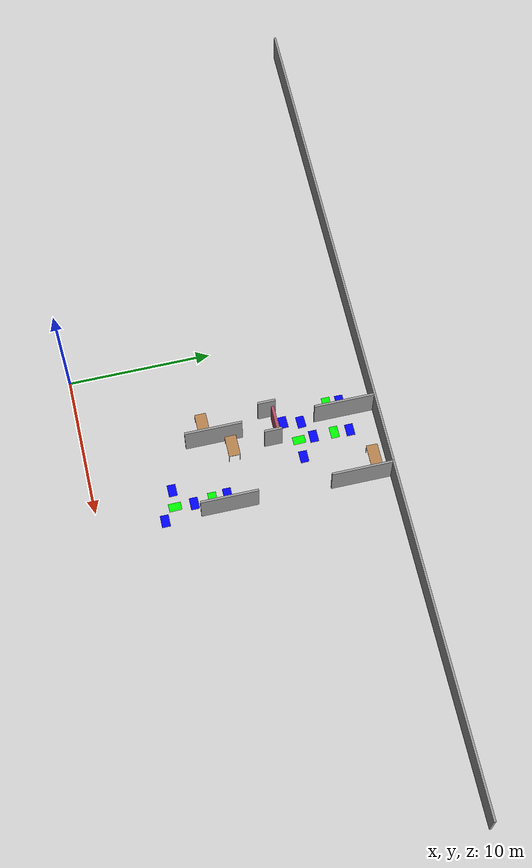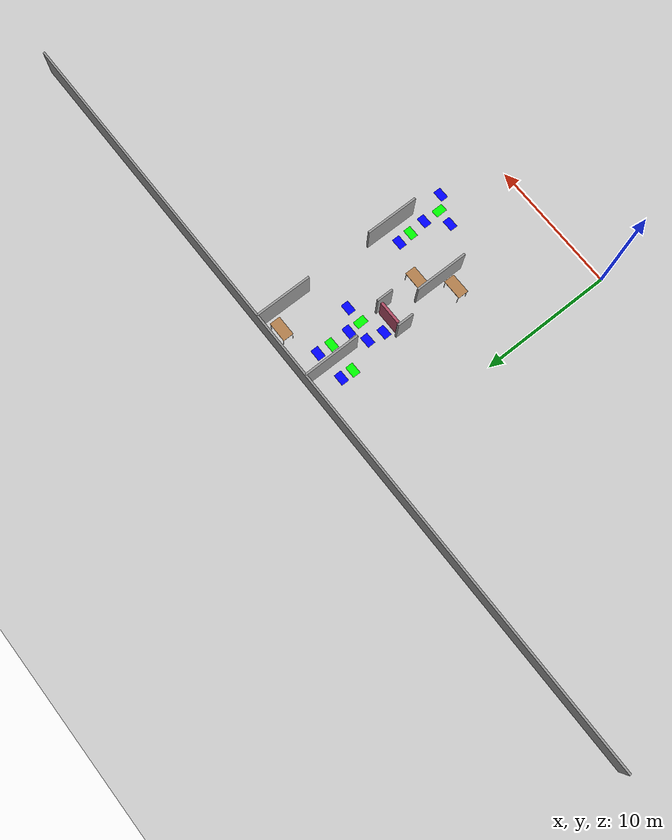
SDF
<sdf version="1.6">
 <world name="default">
  <model name="ground_plane">
   <pose>0 0 0.001 0 -0 0</pose>
   <static>1</static>
   <link name="link">
    <collision name="collision">
     <geometry><plane><normal>0 0 1</normal><size>100 100</size></plane></geometry>
     <surface><friction><ode><mu>100</mu><mu2>50</mu2></ode></friction></surface>
    </collision>
    <visual name="visual">
     <cast_shadows>0</cast_shadows>
     <geometry><plane><normal>0 0 1</normal><size>100 100</size></plane></geometry>
     <material>
      <script><uri>file://media/materials/scripts/gazebo.material</uri><name>Gazebo/Grey</name></script>
     </material>
    </visual>
   </link>
  </model>
  <model name="table_8">
   <static>1</static>
   <link name="link">
    <collision name="surface">
     <pose>0 0 1 0 -0 0</pose>
     <geometry><box><size>1.5 0.8 0.03</size></box></geometry>
     <surface><friction><ode><mu>0.6</mu><mu2>0.6</mu2></ode></friction></surface>
    </collision>
    <visual name="visual1">
     <pose>0 0 1 0 -0 0</pose>
     <geometry><box><size>1.5 0.8 0.03</size></box></geometry>
     <material>
      <script><uri>file://media/materials/scripts/gazebo.material</uri><name>Gazebo/Wood</name></script>
     </material>
    </visual>
    <collision name="front_left_leg">
     <pose>0.68 0.38 0.5 0 -0 0</pose>
     <geometry><cylinder><radius>0.02</radius><length>1</length></cylinder></geometry>
    </collision>
    <visual name="front_left_leg">
     <pose>0.68 0.38 0.5 0 -0 0</pose>
     <geometry><cylinder><radius>0.02</radius><length>1</length></cylinder></geometry>
     <material>
      <script><uri>file://media/materials/scripts/gazebo.material</uri><name>Gazebo/Grey</name></script>
     </material>
    </visual>
    <collision name="front_right_leg">
     <pose>0.68 -0.38 0.5 0 -0 0</pose>
     <geometry><cylinder><radius>0.02</radius><length>1</length></cylinder></geometry>
    </collision>
    <visual name="front_right_leg">
     <pose>0.68 -0.38 0.5 0 -0 0</pose>
     <geometry><cylinder><radius>0.02</radius><length>1</length></cylinder></geometry>
     <material>
      <script><uri>file://media/materials/scripts/gazebo.material</uri><name>Gazebo/Grey</name></script>
     </material>
    </visual>
    <collision name="back_right_leg">
     <pose>-0.68 -0.38 0.5 0 -0 0</pose>
     <geometry><cylinder><radius>0.02</radius><length>1</length></cylinder></geometry>
    </collision>
    <visual name="back_right_leg">
     <pose>-0.68 -0.38 0.5 0 -0 0</pose>
     <geometry><cylinder><radius>0.02</radius><length>1</length></cylinder></geometry>
     <material>
      <script><uri>file://media/materials/scripts/gazebo.material</uri><name>Gazebo/Grey</name></script>
     </material>
    </visual>
    <collision name="back_left_leg">
     <pose>-0.68 0.38 0.5 0 -0 0</pose>
     <geometry><cylinder><radius>0.02</radius><length>1</length></cylinder></geometry>
    </collision>
    <visual name="back_left_leg">
     <pose>-0.68 0.38 0.5 0 -0 0</pose>
     <geometry><cylinder><radius>0.02</radius><length>1</length></cylinder></geometry>
     <material>
      <script><uri>file://media/materials/scripts/gazebo.material</uri><name>Gazebo/Grey</name></script>
     </material>
    </visual>
   </link>
   <pose>5.52089 8.38758 0.001 0 -0 0</pose>
  </model>
  <model name="table_9">
   <static>1</static>
   <link name="link">
    <collision name="surface">
     <pose>0 0 1 0 -0 0</pose>
     <geometry><box><size>1.5 0.8 0.03</size></box></geometry>
     <surface><friction><ode><mu>0.6</mu><mu2>0.6</mu2></ode></friction></surface>
    </collision>
    <visual name="visual1">
     <pose>0 0 1 0 -0 0</pose>
     <geometry><box><size>1.5 0.8 0.03</size></box></geometry>
     <material>
      <script><uri>file://media/materials/scripts/gazebo.material</uri><name>Gazebo/Wood</name></script>
     </material>
    </visual>
    <collision name="front_left_leg">
     <pose>0.68 0.38 0.5 0 -0 0</pose>
     <geometry><cylinder><radius>0.02</radius><length>1</length></cylinder></geometry>
    </collision>
    <visual name="front_left_leg">
     <pose>0.68 0.38 0.5 0 -0 0</pose>
     <geometry><cylinder><radius>0.02</radius><length>1</length></cylinder></geometry>
     <material>
      <script><uri>file://media/materials/scripts/gazebo.material</uri><name>Gazebo/Grey</name></script>
     </material>
    </visual>
    <collision name="front_right_leg">
     <pose>0.68 -0.38 0.5 0 -0 0</pose>
     <geometry><cylinder><radius>0.02</radius><length>1</length></cylinder></geometry>
    </collision>
    <visual name="front_right_leg">
     <pose>0.68 -0.38 0.5 0 -0 0</pose>
     <geometry><cylinder><radius>0.02</radius><length>1</length></cylinder></geometry>
     <material>
      <script><uri>file://media/materials/scripts/gazebo.material</uri><name>Gazebo/Grey</name></script>
     </material>
    </visual>
    <collision name="back_right_leg">
     <pose>-0.68 -0.38 0.5 0 -0 0</pose>
     <geometry><cylinder><radius>0.02</radius><length>1</length></cylinder></geometry>
    </collision>
    <visual name="back_right_leg">
     <pose>-0.68 -0.38 0.5 0 -0 0</pose>
     <geometry><cylinder><radius>0.02</radius><length>1</length></cylinder></geometry>
     <material>
      <script><uri>file://media/materials/scripts/gazebo.material</uri><name>Gazebo/Grey</name></script>
     </material>
    </visual>
    <collision name="back_left_leg">
     <pose>-0.68 0.38 0.5 0 -0 0</pose>
     <geometry><cylinder><radius>0.02</radius><length>1</length></cylinder></geometry>
    </collision>
    <visual name="back_left_leg">
     <pose>-0.68 0.38 0.5 0 -0 0</pose>
     <geometry><cylinder><radius>0.02</radius><length>1</length></cylinder></geometry>
     <material>
      <script><uri>file://media/materials/scripts/gazebo.material</uri><name>Gazebo/Grey</name></script>
     </material>
    </visual>
   </link>
   <pose>10.3778 19.3786 0.001 0 -0 0</pose>
  </model>
  <model name="table_12">
   <static>1</static>
   <link name="link">
    <collision name="surface">
     <pose>0 0 1 0 -0 0</pose>
     <geometry><box><size>1.5 0.8 0.03</size></box></geometry>
     <surface><friction><ode><mu>0.6</mu><mu2>0.6</mu2></ode></friction></surface>
    </collision>
    <visual name="visual1">
     <pose>0 0 1 0 -0 0</pose>
     <geometry><box><size>1.5 0.8 0.03</size></box></geometry>
     <material>
      <script><uri>file://media/materials/scripts/gazebo.material</uri><name>Gazebo/Wood</name></script>
     </material>
    </visual>
    <collision name="front_left_leg">
     <pose>0.68 0.38 0.5 0 -0 0</pose>
     <geometry><cylinder><radius>0.02</radius><length>1</length></cylinder></geometry>
    </collision>
    <visual name="front_left_leg">
     <pose>0.68 0.38 0.5 0 -0 0</pose>
     <geometry><cylinder><radius>0.02</radius><length>1</length></cylinder></geometry>
     <material>
      <script><uri>file://media/materials/scripts/gazebo.material</uri><name>Gazebo/Grey</name></script>
     </material>
    </visual>
    <collision name="front_right_leg">
     <pose>0.68 -0.38 0.5 0 -0 0</pose>
     <geometry><cylinder><radius>0.02</radius><length>1</length></cylinder></geometry>
    </collision>
    <visual name="front_right_leg">
     <pose>0.68 -0.38 0.5 0 -0 0</pose>
     <geometry><cylinder><radius>0.02</radius><length>1</length></cylinder></geometry>
     <material>
      <script><uri>file://media/materials/scripts/gazebo.material</uri><name>Gazebo/Grey</name></script>
     </material>
    </visual>
    <collision name="back_right_leg">
     <pose>-0.68 -0.38 0.5 0 -0 0</pose>
     <geometry><cylinder><radius>0.02</radius><length>1</length></cylinder></geometry>
    </collision>
    <visual name="back_right_leg">
     <pose>-0.68 -0.38 0.5 0 -0 0</pose>
     <geometry><cylinder><radius>0.02</radius><length>1</length></cylinder></geometry>
     <material>
      <script><uri>file://media/materials/scripts/gazebo.material</uri><name>Gazebo/Grey</name></script>
     </material>
    </visual>
    <collision name="back_left_leg">
     <pose>-0.68 0.38 0.5 0 -0 0</pose>
     <geometry><cylinder><radius>0.02</radius><length>1</length></cylinder></geometry>
    </collision>
    <visual name="back_left_leg">
     <pose>-0.68 0.38 0.5 0 -0 0</pose>
     <geometry><cylinder><radius>0.02</radius><length>1</length></cylinder></geometry>
     <material>
      <script><uri>file://media/materials/scripts/gazebo.material</uri><name>Gazebo/Grey</name></script>
     </material>
    </visual>
   </link>
   <pose>7.58214 10.0723 0.001 0 -0 0</pose>
  </model>
  <model name="intersection_19">
   <link name="link">
    <pose>0 0 0.001 0 -0 0</pose>
    <inertial>
     <mass>0.0352517</mass>
     <inertia>
      <ixx>0.000997067</ixx>
      <ixy>0</ixy>
      <ixz>0</ixz>
      <iyy>0.00220147</iyy>
      <iyz>0</iyz>
      <izz>0.0031692</izz>
     </inertia>
     <pose>0 0 0.001 0 -0 0</pose>
    </inertial>
    <visual name="visual">
     <geometry><box><size>0.862743 0.578289 1e-06</size></box></geometry>
     <material>
      <script><name>Gazebo/Grey</name><uri>file://media/materials/scripts/gazebo.material</uri></script>
      <ambient>0 0 1 1</ambient>
      <diffuse>0 0 1 1</diffuse>
      <specular>0 0 1 1</specular>
      <emissive>0 0 1 1</emissive>
      <shader type="vertex"><normal_map>__default__</normal_map></shader>
     </material>
     <pose>0 0 0.001 0 -0 0</pose>
    </visual>
    <collision name="collision">
     <pose>0 0 0.001 0 -0 0</pose>
     <geometry><box><size>0.862743 0.578289 0.000477</size></box></geometry>
     <surface>
      <friction>
       <ode><mu>1</mu><mu2>1</mu2><fdir1>0 0 0</fdir1><slip1>0</slip1><slip2>0</slip2></ode>
       <torsional>
        <coefficient>1</coefficient>
        <patch_radius>0</patch_radius>
        <surface_radius>0</surface_radius>
        <use_patch_radius>1</use_patch_radius>
        <ode><slip>0</slip></ode>
       </torsional>
      </friction>
      <bounce><restitution_coefficient>0</restitution_coefficient><threshold>1e+06</threshold></bounce>
      <contact>
       <collide_without_contact>0</collide_without_contact>
       <collide_without_contact_bitmask>1</collide_without_contact_bitmask>
       <collide_bitmask>1</collide_bitmask>
       <ode>
        <soft_cfm>0</soft_cfm>
        <soft_erp>0.2</soft_erp>
        <kp>1e+13</kp>
        <kd>1</kd>
        <max_vel>0.01</max_vel>
        <min_depth>0</min_depth>
       </ode>
       <bullet>
        <split_impulse>1</split_impulse>
        <split_impulse_penetration_threshold>-0.01</split_impulse_penetration_threshold>
        <soft_cfm>0</soft_cfm>
        <soft_erp>0.2</soft_erp>
        <kp>1e+13</kp>
        <kd>1</kd>
       </bullet>
      </contact>
     </surface>
    </collision>
   </link>
   <static>1</static>
   <pose>10.76 6.70655 0 0 -0 0</pose>
  </model>
  <model name="corridor_7">
   <link name="link">
    <pose>0 0 0.001 0 -0 0</pose>
    <inertial>
     <mass>0.0352517</mass>
     <inertia>
      <ixx>0.00099707</ixx>
      <ixy>0</ixy>
      <ixz>0</ixz>
      <iyy>0.00220147</iyy>
      <iyz>0</iyz>
      <izz>0.0031692</izz>
     </inertia>
     <pose>0 0 0.001 0 -0 0</pose>
    </inertial>
    <visual name="visual">
     <geometry><box><size>0.862743 0.578289 1e-06</size></box></geometry>
     <material>
      <script><name>Gazebo/Grey</name><uri>file://media/materials/scripts/gazebo.material</uri></script>
      <ambient>0 1 0 1</ambient>
      <diffuse>0 1 0 1</diffuse>
      <specular>0 1 0 1</specular>
      <emissive>0 1 0 1</emissive>
      <shader type="vertex"><normal_map>__default__</normal_map></shader>
     </material>
     <pose>0 0 0.001 0 -0 0</pose>
    </visual>
    <collision name="collision">
     <pose>0 0 0.001 0 -0 0</pose>
     <geometry><box><size>0.862743 0.578289 0.000477</size></box></geometry>
     <surface>
      <friction>
       <ode><mu>1</mu><mu2>1</mu2><fdir1>0 0 0</fdir1><slip1>0</slip1><slip2>0</slip2></ode>
       <torsional>
        <coefficient>1</coefficient>
        <patch_radius>0</patch_radius>
        <surface_radius>0</surface_radius>
        <use_patch_radius>1</use_patch_radius>
        <ode><slip>0</slip></ode>
       </torsional>
      </friction>
      <bounce><restitution_coefficient>0</restitution_coefficient><threshold>1e+06</threshold></bounce>
      <contact>
       <collide_without_contact>0</collide_without_contact>
       <collide_without_contact_bitmask>1</collide_without_contact_bitmask>
       <collide_bitmask>1</collide_bitmask>
       <ode>
        <soft_cfm>0</soft_cfm>
        <soft_erp>0.2</soft_erp>
        <kp>1e+13</kp>
        <kd>1</kd>
        <max_vel>0.01</max_vel>
        <min_depth>0</min_depth>
       </ode>
       <bullet>
        <split_impulse>1</split_impulse>
        <split_impulse_penetration_threshold>-0.01</split_impulse_penetration_threshold>
        <soft_cfm>0</soft_cfm>
        <soft_erp>0.2</soft_erp>
        <kp>1e+13</kp>
        <kd>1</kd>
       </bullet>
      </contact>
     </surface>
    </collision>
   </link>
   <static>1</static>
   <pose>10.7179 5.37416 0 0 -0 1.58663</pose>
  </model>
  <model name="corridor_10">
   <link name="link">
    <pose>0 0 0.001 0 -0 0</pose>
    <inertial>
     <mass>0.0352517</mass>
     <inertia>
      <ixx>0.00099707</ixx>
      <ixy>0</ixy>
      <ixz>0</ixz>
      <iyy>0.00220147</iyy>
      <iyz>0</iyz>
      <izz>0.0031692</izz>
     </inertia>
     <pose>0 0 0.001 0 -0 0</pose>
    </inertial>
    <visual name="visual">
     <geometry><box><size>0.862743 0.578289 1e-06</size></box></geometry>
     <material>
      <script><name>Gazebo/Grey</name><uri>file://media/materials/scripts/gazebo.material</uri></script>
      <ambient>0 1 0 1</ambient>
      <diffuse>0 1 0 1</diffuse>
      <specular>0 1 0 1</specular>
      <emissive>0 1 0 1</emissive>
      <shader type="vertex"><normal_map>__default__</normal_map></shader>
     </material>
     <pose>0 0 0.001 0 -0 0</pose>
    </visual>
    <collision name="collision">
     <pose>0 0 0.001 0 -0 0</pose>
     <geometry><box><size>0.862743 0.578289 0.000477</size></box></geometry>
     <surface>
      <friction>
       <ode><mu>1</mu><mu2>1</mu2><fdir1>0 0 0</fdir1><slip1>0</slip1><slip2>0</slip2></ode>
       <torsional>
        <coefficient>1</coefficient>
        <patch_radius>0</patch_radius>
        <surface_radius>0</surface_radius>
        <use_patch_radius>1</use_patch_radius>
        <ode><slip>0</slip></ode>
       </torsional>
      </friction>
      <bounce><restitution_coefficient>0</restitution_coefficient><threshold>1e+06</threshold></bounce>
      <contact>
       <collide_without_contact>0</collide_without_contact>
       <collide_without_contact_bitmask>1</collide_without_contact_bitmask>
       <collide_bitmask>1</collide_bitmask>
       <ode>
        <soft_cfm>0</soft_cfm>
        <soft_erp>0.2</soft_erp>
        <kp>1e+13</kp>
        <kd>1</kd>
        <max_vel>0.01</max_vel>
        <min_depth>0</min_depth>
       </ode>
       <bullet>
        <split_impulse>1</split_impulse>
        <split_impulse_penetration_threshold>-0.01</split_impulse_penetration_threshold>
        <soft_cfm>0</soft_cfm>
        <soft_erp>0.2</soft_erp>
        <kp>1e+13</kp>
        <kd>1</kd>
       </bullet>
      </contact>
     </surface>
    </collision>
   </link>
   <static>1</static>
   <pose>7.76072 14.7316 0 0 0 -1.54161</pose>
  </model>
  <model name="intersection_20">
   <link name="link">
    <pose>0 0 0.001 0 -0 0</pose>
    <inertial>
     <mass>0.0352517</mass>
     <inertia>
      <ixx>0.000997067</ixx>
      <ixy>0</ixy>
      <ixz>0</ixz>
      <iyy>0.00220147</iyy>
      <iyz>0</iyz>
      <izz>0.0031692</izz>
     </inertia>
     <pose>0 0 0.001 0 -0 0</pose>
    </inertial>
    <visual name="visual">
     <geometry><box><size>0.862743 0.578289 1e-06</size></box></geometry>
     <material>
      <script><name>Gazebo/Grey</name><uri>file://media/materials/scripts/gazebo.material</uri></script>
      <ambient>0 0 1 1</ambient>
      <diffuse>0 0 1 1</diffuse>
      <specular>0 0 1 1</specular>
      <emissive>0 0 1 1</emissive>
      <shader type="vertex"><normal_map>__default__</normal_map></shader>
     </material>
     <pose>0 0 0.001 0 -0 0</pose>
    </visual>
    <collision name="collision">
     <pose>0 0 0.001 0 -0 0</pose>
     <geometry><box><size>0.862743 0.578289 0.000477</size></box></geometry>
     <surface>
      <friction>
       <ode><mu>1</mu><mu2>1</mu2><fdir1>0 0 0</fdir1><slip1>0</slip1><slip2>0</slip2></ode>
       <torsional>
        <coefficient>1</coefficient>
        <patch_radius>0</patch_radius>
        <surface_radius>0</surface_radius>
        <use_patch_radius>1</use_patch_radius>
        <ode><slip>0</slip></ode>
       </torsional>
      </friction>
      <bounce><restitution_coefficient>0</restitution_coefficient><threshold>1e+06</threshold></bounce>
      <contact>
       <collide_without_contact>0</collide_without_contact>
       <collide_without_contact_bitmask>1</collide_without_contact_bitmask>
       <collide_bitmask>1</collide_bitmask>
       <ode>
        <soft_cfm>0</soft_cfm>
        <soft_erp>0.2</soft_erp>
        <kp>1e+13</kp>
        <kd>1</kd>
        <max_vel>0.01</max_vel>
        <min_depth>0</min_depth>
       </ode>
       <bullet>
        <split_impulse>1</split_impulse>
        <split_impulse_penetration_threshold>-0.01</split_impulse_penetration_threshold>
        <soft_cfm>0</soft_cfm>
        <soft_erp>0.2</soft_erp>
        <kp>1e+13</kp>
        <kd>1</kd>
       </bullet>
      </contact>
     </surface>
    </collision>
   </link>
   <static>1</static>
   <pose>7.71007 15.776 0 0 -0 0</pose>
  </model>
  <model name="intersection_21">
   <link name="link">
    <pose>0 0 0.001 0 -0 0</pose>
    <inertial>
     <mass>0.0352517</mass>
     <inertia>
      <ixx>0.000997067</ixx>
      <ixy>0</ixy>
      <ixz>0</ixz>
      <iyy>0.00220147</iyy>
      <iyz>0</iyz>
      <izz>0.0031692</izz>
     </inertia>
     <pose>0 0 0.001 0 -0 0</pose>
    </inertial>
    <visual name="visual">
     <geometry><box><size>0.862743 0.578289 1e-06</size></box></geometry>
     <material>
      <script><name>Gazebo/Grey</name><uri>file://media/materials/scripts/gazebo.material</uri></script>
      <ambient>0 0 1 1</ambient>
      <diffuse>0 0 1 1</diffuse>
      <specular>0 0 1 1</specular>
      <emissive>0 0 1 1</emissive>
      <shader type="vertex"><normal_map>__default__</normal_map></shader>
     </material>
     <pose>0 0 0.001 0 -0 0</pose>
    </visual>
    <collision name="collision">
     <pose>0 0 0.001 0 -0 0</pose>
     <geometry><box><size>0.862743 0.578289 0.000477</size></box></geometry>
     <surface>
      <friction>
       <ode><mu>1</mu><mu2>1</mu2><fdir1>0 0 0</fdir1><slip1>0</slip1><slip2>0</slip2></ode>
       <torsional>
        <coefficient>1</coefficient>
        <patch_radius>0</patch_radius>
        <surface_radius>0</surface_radius>
        <use_patch_radius>1</use_patch_radius>
        <ode><slip>0</slip></ode>
       </torsional>
      </friction>
      <bounce><restitution_coefficient>0</restitution_coefficient><threshold>1e+06</threshold></bounce>
      <contact>
       <collide_without_contact>0</collide_without_contact>
       <collide_without_contact_bitmask>1</collide_without_contact_bitmask>
       <collide_bitmask>1</collide_bitmask>
       <ode>
        <soft_cfm>0</soft_cfm>
        <soft_erp>0.2</soft_erp>
        <kp>1e+13</kp>
        <kd>1</kd>
        <max_vel>0.01</max_vel>
        <min_depth>0</min_depth>
       </ode>
       <bullet>
        <split_impulse>1</split_impulse>
        <split_impulse_penetration_threshold>-0.01</split_impulse_penetration_threshold>
        <soft_cfm>0</soft_cfm>
        <soft_erp>0.2</soft_erp>
        <kp>1e+13</kp>
        <kd>1</kd>
       </bullet>
      </contact>
     </surface>
    </collision>
   </link>
   <static>1</static>
   <pose>11.5815 4.52662 0 0 -0 0</pose>
  </model>
  <model name="intersection_50">
   <link name="link">
    <pose>0 0 0.001 0 -0 0</pose>
    <inertial>
     <mass>0.0352517</mass>
     <inertia>
      <ixx>0.000997067</ixx>
      <ixy>0</ixy>
      <ixz>0</ixz>
      <iyy>0.00220147</iyy>
      <iyz>0</iyz>
      <izz>0.0031692</izz>
     </inertia>
     <pose>0 0 0.001 0 -0 0</pose>
    </inertial>
    <visual name="visual">
     <geometry><box><size>0.862743 0.578289 1e-06</size></box></geometry>
     <material>
      <script><name>Gazebo/Grey</name><uri>file://media/materials/scripts/gazebo.material</uri></script>
      <ambient>0 0 1 1</ambient>
      <diffuse>0 0 1 1</diffuse>
      <specular>0 0 1 1</specular>
      <emissive>0 0 1 1</emissive>
      <shader type="vertex"><normal_map>__default__</normal_map></shader>
     </material>
     <pose>0 0 0.001 0 -0 0</pose>
    </visual>
    <collision name="collision">
     <pose>0 0 0.001 0 -0 0</pose>
     <geometry><box><size>0.862743 0.578289 0.000477</size></box></geometry>
     <surface>
      <friction>
       <ode><mu>1</mu><mu2>1</mu2><fdir1>0 0 0</fdir1><slip1>0</slip1><slip2>0</slip2></ode>
       <torsional>
        <coefficient>1</coefficient>
        <patch_radius>0</patch_radius>
        <surface_radius>0</surface_radius>
        <use_patch_radius>1</use_patch_radius>
        <ode><slip>0</slip></ode>
       </torsional>
      </friction>
      <bounce><restitution_coefficient>0</restitution_coefficient><threshold>1e+06</threshold></bounce>
      <contact>
       <collide_without_contact>0</collide_without_contact>
       <collide_without_contact_bitmask>1</collide_without_contact_bitmask>
       <collide_bitmask>1</collide_bitmask>
       <ode>
        <soft_cfm>0</soft_cfm>
        <soft_erp>0.2</soft_erp>
        <kp>1e+13</kp>
        <kd>1</kd>
        <max_vel>0.01</max_vel>
        <min_depth>0</min_depth>
       </ode>
       <bullet>
        <split_impulse>1</split_impulse>
        <split_impulse_penetration_threshold>-0.01</split_impulse_penetration_threshold>
        <soft_cfm>0</soft_cfm>
        <soft_erp>0.2</soft_erp>
        <kp>1e+13</kp>
        <kd>1</kd>
       </bullet>
      </contact>
     </surface>
    </collision>
   </link>
   <static>1</static>
   <pose>9.05513 14.7645 0.001956 0 -0 0</pose>
  </model>
  <model name="intersection_51">
   <link name="link">
    <pose>0 0 0.001 0 -0 0</pose>
    <inertial>
     <mass>0.0352517</mass>
     <inertia>
      <ixx>0.000997067</ixx>
      <ixy>0</ixy>
      <ixz>0</ixz>
      <iyy>0.00220147</iyy>
      <iyz>0</iyz>
      <izz>0.0031692</izz>
     </inertia>
     <pose>0 0 0.001 0 -0 0</pose>
    </inertial>
    <visual name="visual">
     <geometry><box><size>0.862743 0.578289 1e-06</size></box></geometry>
     <material>
      <script><name>Gazebo/Grey</name><uri>file://media/materials/scripts/gazebo.material</uri></script>
      <ambient>0 0 1 1</ambient>
      <diffuse>0 0 1 1</diffuse>
      <specular>0 0 1 1</specular>
      <emissive>0 0 1 1</emissive>
      <shader type="vertex"><normal_map>__default__</normal_map></shader>
     </material>
     <pose>0 0 0.001 0 -0 0</pose>
    </visual>
    <collision name="collision">
     <pose>0 0 0.001 0 -0 0</pose>
     <geometry><box><size>0.862743 0.578289 0.000477</size></box></geometry>
     <surface>
      <friction>
       <ode><mu>1</mu><mu2>1</mu2><fdir1>0 0 0</fdir1><slip1>0</slip1><slip2>0</slip2></ode>
       <torsional>
        <coefficient>1</coefficient>
        <patch_radius>0</patch_radius>
        <surface_radius>0</surface_radius>
        <use_patch_radius>1</use_patch_radius>
        <ode><slip>0</slip></ode>
       </torsional>
      </friction>
      <bounce><restitution_coefficient>0</restitution_coefficient><threshold>1e+06</threshold></bounce>
      <contact>
       <collide_without_contact>0</collide_without_contact>
       <collide_without_contact_bitmask>1</collide_without_contact_bitmask>
       <collide_bitmask>1</collide_bitmask>
       <ode>
        <soft_cfm>0</soft_cfm>
        <soft_erp>0.2</soft_erp>
        <kp>1e+13</kp>
        <kd>1</kd>
        <max_vel>0.01</max_vel>
        <min_depth>0</min_depth>
       </ode>
       <bullet>
        <split_impulse>1</split_impulse>
        <split_impulse_penetration_threshold>-0.01</split_impulse_penetration_threshold>
        <soft_cfm>0</soft_cfm>
        <soft_erp>0.2</soft_erp>
        <kp>1e+13</kp>
        <kd>1</kd>
       </bullet>
      </contact>
     </surface>
    </collision>
   </link>
   <static>1</static>
   <pose>6.4705 15.1638 0 0 -0 0.024873</pose>
  </model>
  <model name="intersection_55">
   <link name="link">
    <pose>0 0 0.001 0 -0 0</pose>
    <inertial>
     <mass>0.0352517</mass>
     <inertia>
      <ixx>0.000997067</ixx>
      <ixy>0</ixy>
      <ixz>0</ixz>
      <iyy>0.00220147</iyy>
      <iyz>0</iyz>
      <izz>0.0031692</izz>
     </inertia>
     <pose>0 0 0.001 0 -0 0</pose>
    </inertial>
    <visual name="visual">
     <geometry><box><size>0.862743 0.578289 1e-06</size></box></geometry>
     <material>
      <script><name>Gazebo/Grey</name><uri>file://media/materials/scripts/gazebo.material</uri></script>
      <ambient>0 0 1 1</ambient>
      <diffuse>0 0 1 1</diffuse>
      <specular>0 0 1 1</specular>
      <emissive>0 0 1 1</emissive>
      <shader type="vertex"><normal_map>__default__</normal_map></shader>
     </material>
     <pose>0 0 0.001 0 -0 0</pose>
    </visual>
    <collision name="collision">
     <pose>0 0 0.001 0 -0 0</pose>
     <geometry><box><size>0.862743 0.578289 0.000477</size></box></geometry>
     <surface>
      <friction>
       <ode><mu>1</mu><mu2>1</mu2><fdir1>0 0 0</fdir1><slip1>0</slip1><slip2>0</slip2></ode>
       <torsional>
        <coefficient>1</coefficient>
        <patch_radius>0</patch_radius>
        <surface_radius>0</surface_radius>
        <use_patch_radius>1</use_patch_radius>
        <ode><slip>0</slip></ode>
       </torsional>
      </friction>
      <bounce><restitution_coefficient>0</restitution_coefficient><threshold>1e+06</threshold></bounce>
      <contact>
       <collide_without_contact>0</collide_without_contact>
       <collide_without_contact_bitmask>1</collide_without_contact_bitmask>
       <collide_bitmask>1</collide_bitmask>
       <ode>
        <soft_cfm>0</soft_cfm>
        <soft_erp>0.2</soft_erp>
        <kp>1e+13</kp>
        <kd>1</kd>
        <max_vel>0.01</max_vel>
        <min_depth>0</min_depth>
       </ode>
       <bullet>
        <split_impulse>1</split_impulse>
        <split_impulse_penetration_threshold>-0.01</split_impulse_penetration_threshold>
        <soft_cfm>0</soft_cfm>
        <soft_erp>0.2</soft_erp>
        <kp>1e+13</kp>
        <kd>1</kd>
       </bullet>
      </contact>
     </surface>
    </collision>
   </link>
   <static>1</static>
   <pose>9.50081 5.42017 0 0 -0 0</pose>
  </model>
  <model name="doorOutside_5">
   <link name="link">
    <pose>0.155539 -0.366282 0.216958 0 -0 0</pose>
    <inertial>
     <mass>2.13199</mass>
     <inertia>
      <ixx>0.452656</ixx>
      <ixy>0</ixy>
      <ixz>0</ixz>
      <iyy>0.796738</iyy>
      <iyz>0</iyz>
      <izz>0.699414</izz>
     </inertia>
    </inertial>
    <visual name="visual">
     <geometry><box><size>1.71368 0.198843 2.05986</size></box></geometry>
     <material>
      <script><name>Gazebo/Grey</name><uri>file://media/materials/scripts/gazebo.material</uri></script>
      <ambient>0.7 0.3 0.4 1</ambient>
      <diffuse>0.7 0.7 0.7 1</diffuse>
      <specular>0.01 0.01 0.01 1</specular>
      <emissive>0 0 0 1</emissive>
      <shader type="vertex"><normal_map>__default__</normal_map></shader>
      <lighting>0</lighting>
     </material>
    </visual>
    <collision name="collision">
     <geometry><box><size>1.71368 0.198843 2.05986</size></box></geometry>
     <surface>
      <friction>
       <ode><mu>1</mu><mu2>1</mu2><fdir1>0 0 0</fdir1><slip1>0</slip1><slip2>0</slip2></ode>
       <torsional>
        <coefficient>1</coefficient>
        <patch_radius>0</patch_radius>
        <surface_radius>0</surface_radius>
        <use_patch_radius>1</use_patch_radius>
        <ode><slip>0</slip></ode>
       </torsional>
      </friction>
      <bounce><restitution_coefficient>0</restitution_coefficient><threshold>1e+06</threshold></bounce>
      <contact>
       <collide_without_contact>0</collide_without_contact>
       <collide_without_contact_bitmask>1</collide_without_contact_bitmask>
       <collide_bitmask>1</collide_bitmask>
       <ode>
        <soft_cfm>0</soft_cfm>
        <soft_erp>0.2</soft_erp>
        <kp>1e+13</kp>
        <kd>1</kd>
        <max_vel>0.01</max_vel>
        <min_depth>0</min_depth>
       </ode>
       <bullet>
        <split_impulse>1</split_impulse>
        <split_impulse_penetration_threshold>-0.01</split_impulse_penetration_threshold>
        <soft_cfm>0</soft_cfm>
        <soft_erp>0.2</soft_erp>
        <kp>1e+13</kp>
        <kd>1</kd>
       </bullet>
      </contact>
     </surface>
    </collision>
   </link>
   <static>0</static>
   <pose>6.45283 13.6601 0.812967 0 -5e-06 -0.000883</pose>
  </model>
  <model name="Se1_cut">
   <pose>3.62364 13.9276 0 0 -0 0</pose>
   <link name="Wall_37">
    <collision name="Wall_37_Collision">
     <geometry><box><size>1.25 0.15 2.5</size></box></geometry>
     <pose>0 0 1.25 0 -0 0</pose>
    </collision>
    <visual name="Wall_37_Visual">
     <pose>0 0 1.25 0 -0 0</pose>
     <geometry><box><size>1.25 0.15 2.5</size></box></geometry>
     <material>
      <script><uri>file://media/materials/scripts/gazebo.material</uri><name>Gazebo/Grey</name></script>
      <ambient>1 1 1 1</ambient>
     </material>
    </visual>
    <pose>1.889 -0.998521 0 0 0 -1.5708</pose>
   </link>
   <link name="Wall_39">
    <collision name="Wall_39_Collision">
     <geometry><box><size>1.25 0.15 2.5</size></box></geometry>
     <pose>0 0 1.25 0 -0 0</pose>
    </collision>
    <visual name="Wall_39_Visual">
     <pose>0 0 1.25 0 -0 0</pose>
     <geometry><box><size>1.25 0.15 2.5</size></box></geometry>
     <material>
      <script><uri>file://media/materials/scripts/gazebo.material</uri><name>Gazebo/Grey</name></script>
      <ambient>1 1 1 1</ambient>
     </material>
    </visual>
    <pose>4.019 -1.00852 0 0 0 -1.5708</pose>
   </link>
   <link name="Wall_5">
    <collision name="Wall_5_Collision">
     <geometry><box><size>60.25 0.15 2.5</size></box></geometry>
     <pose>0 0 1.25 0 -0 0</pose>
    </collision>
    <visual name="Wall_5_Visual">
     <pose>0 0 1.25 0 -0 0</pose>
     <geometry><box><size>60.25 0.15 2.5</size></box></geometry>
     <material>
      <script><uri>file://media/materials/scripts/gazebo.material</uri><name>Gazebo/Grey</name></script>
      <ambient>1 1 1 1</ambient>
     </material>
    </visual>
    <pose>2.46862 6.375 0 0 -0 3.14159</pose>
   </link>
   <link name="Wall_59">
    <collision name="Wall_59_Collision">
     <geometry><box><size>4.25 0.15 2.5</size></box></geometry>
     <pose>0 0 1.25 0 -0 0</pose>
    </collision>
    <visual name="Wall_59_Visual">
     <pose>0 0 1.25 0 -0 0</pose>
     <geometry><box><size>4.25 0.15 2.5</size></box></geometry>
     <material>
      <script><uri>file://media/materials/scripts/gazebo.material</uri><name>Gazebo/Grey</name></script>
      <ambient>1 1 1 1</ambient>
     </material>
    </visual>
    <pose>2.96947 4.24479 0 0 0 -1.5708</pose>
   </link>
   <link name="Wall_61">
    <collision name="Wall_61_Collision">
     <geometry><box><size>4.25 0.15 2.5</size></box></geometry>
     <pose>0 0 1.25 0 -0 0</pose>
    </collision>
    <visual name="Wall_61_Visual">
     <pose>0 0 1.25 0 -0 0</pose>
     <geometry><box><size>4.25 0.15 2.5</size></box></geometry>
     <material>
      <script><uri>file://media/materials/scripts/gazebo.material</uri><name>Gazebo/Grey</name></script>
      <ambient>1 1 1 1</ambient>
     </material>
    </visual>
    <pose>8.07671 4.24479 0 0 0 -1.5708</pose>
   </link>
   <link name="Wall_97">
    <collision name="Wall_97_Collision">
     <geometry><box><size>4 0.15 2.5</size></box></geometry>
     <pose>0 0 1.25 0 -0 0</pose>
    </collision>
    <visual name="Wall_97_Visual">
     <pose>0 0 1.25 0 -0 0</pose>
     <geometry><box><size>4 0.15 2.5</size></box></geometry>
     <material>
      <script><uri>file://media/materials/scripts/gazebo.material</uri><name>Gazebo/Grey</name></script>
      <ambient>1 1 1 1</ambient>
     </material>
    </visual>
    <pose>2.99871 -4.95749 0 0 0 -1.5708</pose>
   </link>
   <link name="Wall_99">
    <collision name="Wall_99_Collision">
     <geometry><box><size>4 0.15 2.5</size></box></geometry>
     <pose>0 0 1.25 0 -0 0</pose>
    </collision>
    <visual name="Wall_99_Visual">
     <pose>0 0 1.25 0 -0 0</pose>
     <geometry><box><size>4 0.15 2.5</size></box></geometry>
     <material>
      <script><uri>file://media/materials/scripts/gazebo.material</uri><name>Gazebo/Grey</name></script>
      <ambient>1 1 1 1</ambient>
     </material>
    </visual>
    <pose>8.09364 -4.92707 0 0 0 -1.5708</pose>
   </link>
   <static>1</static>
  </model>
  <model name="intersection_33_clone_6">
   <link name="link">
    <pose>0 0 0.001 0 -0 0</pose>
    <inertial>
     <mass>0.0352517</mass>
     <inertia>
      <ixx>0.000997067</ixx>
      <ixy>0</ixy>
      <ixz>0</ixz>
      <iyy>0.00220147</iyy>
      <iyz>0</iyz>
      <izz>0.0031692</izz>
     </inertia>
     <pose>0 0 0.001 0 -0 0</pose>
    </inertial>
    <visual name="visual">
     <geometry><box><size>0.862743 0.578289 1e-06</size></box></geometry>
     <material>
      <script><name>Gazebo/Grey</name><uri>file://media/materials/scripts/gazebo.material</uri></script>
      <ambient>0 0 1 1</ambient>
      <diffuse>0 0 1 1</diffuse>
      <specular>0 0 1 1</specular>
      <emissive>0 0 1 1</emissive>
      <shader type="vertex"><normal_map>__default__</normal_map></shader>
     </material>
     <pose>0 0 0.001 0 -0 0</pose>
    </visual>
    <collision name="collision">
     <pose>0 0 0.001 0 -0 0</pose>
     <geometry><box><size>0.862743 0.578289 0.000477</size></box></geometry>
     <surface>
      <friction>
       <ode><mu>1</mu><mu2>1</mu2><fdir1>0 0 0</fdir1><slip1>0</slip1><slip2>0</slip2></ode>
       <torsional>
        <coefficient>1</coefficient>
        <patch_radius>0</patch_radius>
        <surface_radius>0</surface_radius>
        <use_patch_radius>1</use_patch_radius>
        <ode><slip>0</slip></ode>
       </torsional>
      </friction>
      <bounce><restitution_coefficient>0</restitution_coefficient><threshold>1e+06</threshold></bounce>
      <contact>
       <collide_without_contact>0</collide_without_contact>
       <collide_without_contact_bitmask>1</collide_without_contact_bitmask>
       <collide_bitmask>1</collide_bitmask>
       <ode>
        <soft_cfm>0</soft_cfm>
        <soft_erp>0.2</soft_erp>
        <kp>1e+13</kp>
        <kd>1</kd>
        <max_vel>0.01</max_vel>
        <min_depth>0</min_depth>
       </ode>
       <bullet>
        <split_impulse>1</split_impulse>
        <split_impulse_penetration_threshold>-0.01</split_impulse_penetration_threshold>
        <soft_cfm>0</soft_cfm>
        <soft_erp>0.2</soft_erp>
        <kp>1e+13</kp>
        <kd>1</kd>
       </bullet>
      </contact>
     </surface>
    </collision>
   </link>
   <static>1</static>
   <pose>10.5889 9.0494 0.011897 0 -0 0</pose>
  </model>
  <model name="intersection_65">
   <link name="link">
    <pose>0 0 0.001 0 -0 0</pose>
    <inertial>
     <mass>0.0352517</mass>
     <inertia>
      <ixx>0.000997067</ixx>
      <ixy>0</ixy>
      <ixz>0</ixz>
      <iyy>0.00220147</iyy>
      <iyz>0</iyz>
      <izz>0.0031692</izz>
     </inertia>
     <pose>0 0 0.001 0 -0 0</pose>
    </inertial>
    <visual name="visual">
     <geometry><box><size>0.862743 0.578289 1e-06</size></box></geometry>
     <material>
      <script><name>Gazebo/Grey</name><uri>file://media/materials/scripts/gazebo.material</uri></script>
      <ambient>0 0 1 1</ambient>
      <diffuse>0 0 1 1</diffuse>
      <specular>0 0 1 1</specular>
      <emissive>0 0 1 1</emissive>
      <shader type="vertex"><normal_map>__default__</normal_map></shader>
     </material>
     <pose>0 0 0.001 0 -0 0</pose>
    </visual>
    <collision name="collision">
     <pose>0 0 0.001 0 -0 0</pose>
     <geometry><box><size>0.862743 0.578289 0.000477</size></box></geometry>
     <surface>
      <friction>
       <ode><mu>1</mu><mu2>1</mu2><fdir1>0 0 0</fdir1><slip1>0</slip1><slip2>0</slip2></ode>
       <torsional>
        <coefficient>1</coefficient>
        <patch_radius>0</patch_radius>
        <surface_radius>0</surface_radius>
        <use_patch_radius>1</use_patch_radius>
        <ode><slip>0</slip></ode>
       </torsional>
      </friction>
      <bounce><restitution_coefficient>0</restitution_coefficient><threshold>1e+06</threshold></bounce>
      <contact>
       <collide_without_contact>0</collide_without_contact>
       <collide_without_contact_bitmask>1</collide_without_contact_bitmask>
       <collide_bitmask>1</collide_bitmask>
       <ode>
        <soft_cfm>0</soft_cfm>
        <soft_erp>0.2</soft_erp>
        <kp>1e+13</kp>
        <kd>1</kd>
        <max_vel>0.01</max_vel>
        <min_depth>0</min_depth>
       </ode>
       <bullet>
        <split_impulse>1</split_impulse>
        <split_impulse_penetration_threshold>-0.01</split_impulse_penetration_threshold>
        <soft_cfm>0</soft_cfm>
        <soft_erp>0.2</soft_erp>
        <kp>1e+13</kp>
        <kd>1</kd>
       </bullet>
      </contact>
     </surface>
    </collision>
   </link>
   <static>1</static>
   <pose>6.23181 13.948 0 0 0 -3.11379</pose>
  </model>
  <model name="intersection_66">
   <link name="link">
    <pose>0 0 0.001 0 -0 0</pose>
    <inertial>
     <mass>0.0352517</mass>
     <inertia>
      <ixx>0.000997067</ixx>
      <ixy>0</ixy>
      <ixz>0</ixz>
      <iyy>0.00220147</iyy>
      <iyz>0</iyz>
      <izz>0.0031692</izz>
     </inertia>
     <pose>0 0 0.001 0 -0 0</pose>
    </inertial>
    <visual name="visual">
     <geometry><box><size>0.862743 0.578289 1e-06</size></box></geometry>
     <material>
      <script><name>Gazebo/Grey</name><uri>file://media/materials/scripts/gazebo.material</uri></script>
      <ambient>0 0 1 1</ambient>
      <diffuse>0 0 1 1</diffuse>
      <specular>0 0 1 1</specular>
      <emissive>0 0 1 1</emissive>
      <shader type="vertex"><normal_map>__default__</normal_map></shader>
     </material>
     <pose>0 0 0.001 0 -0 0</pose>
    </visual>
    <collision name="collision">
     <pose>0 0 0.001 0 -0 0</pose>
     <geometry><box><size>0.862743 0.578289 0.000477</size></box></geometry>
     <surface>
      <friction>
       <ode><mu>1</mu><mu2>1</mu2><fdir1>0 0 0</fdir1><slip1>0</slip1><slip2>0</slip2></ode>
       <torsional>
        <coefficient>1</coefficient>
        <patch_radius>0</patch_radius>
        <surface_radius>0</surface_radius>
        <use_patch_radius>1</use_patch_radius>
        <ode><slip>0</slip></ode>
       </torsional>
      </friction>
      <bounce><restitution_coefficient>0</restitution_coefficient><threshold>1e+06</threshold></bounce>
      <contact>
       <collide_without_contact>0</collide_without_contact>
       <collide_without_contact_bitmask>1</collide_without_contact_bitmask>
       <collide_bitmask>1</collide_bitmask>
       <ode>
        <soft_cfm>0</soft_cfm>
        <soft_erp>0.2</soft_erp>
        <kp>1e+13</kp>
        <kd>1</kd>
        <max_vel>0.01</max_vel>
        <min_depth>0</min_depth>
       </ode>
       <bullet>
        <split_impulse>1</split_impulse>
        <split_impulse_penetration_threshold>-0.01</split_impulse_penetration_threshold>
        <soft_cfm>0</soft_cfm>
        <soft_erp>0.2</soft_erp>
        <kp>1e+13</kp>
        <kd>1</kd>
       </bullet>
      </contact>
     </surface>
    </collision>
   </link>
   <static>1</static>
   <pose>7.79391 18.3449 0 0 -0 0</pose>
  </model>
  <model name="intersection_68">
   <link name="link">
    <pose>0 0 0.001 0 -0 0</pose>
    <inertial>
     <mass>0.0352517</mass>
     <inertia>
      <ixx>0.000997067</ixx>
      <ixy>0</ixy>
      <ixz>0</ixz>
      <iyy>0.00220147</iyy>
      <iyz>0</iyz>
      <izz>0.0031692</izz>
     </inertia>
     <pose>0 0 0.001 0 -0 0</pose>
    </inertial>
    <visual name="visual">
     <geometry><box><size>0.862743 0.578289 1e-06</size></box></geometry>
     <material>
      <script><name>Gazebo/Grey</name><uri>file://media/materials/scripts/gazebo.material</uri></script>
      <ambient>0 0 1 1</ambient>
      <diffuse>0 0 1 1</diffuse>
      <specular>0 0 1 1</specular>
      <emissive>0 0 1 1</emissive>
      <shader type="vertex"><normal_map>__default__</normal_map></shader>
     </material>
     <pose>0 0 0.001 0 -0 0</pose>
    </visual>
    <collision name="collision">
     <pose>0 0 0.001 0 -0 0</pose>
     <geometry><box><size>0.862743 0.578289 0.000477</size></box></geometry>
     <surface>
      <friction>
       <ode><mu>1</mu><mu2>1</mu2><fdir1>0 0 0</fdir1><slip1>0</slip1><slip2>0</slip2></ode>
       <torsional>
        <coefficient>1</coefficient>
        <patch_radius>0</patch_radius>
        <surface_radius>0</surface_radius>
        <use_patch_radius>1</use_patch_radius>
        <ode><slip>0</slip></ode>
       </torsional>
      </friction>
      <bounce><restitution_coefficient>0</restitution_coefficient><threshold>1e+06</threshold></bounce>
      <contact>
       <collide_without_contact>0</collide_without_contact>
       <collide_without_contact_bitmask>1</collide_without_contact_bitmask>
       <collide_bitmask>1</collide_bitmask>
       <ode>
        <soft_cfm>0</soft_cfm>
        <soft_erp>0.2</soft_erp>
        <kp>1e+13</kp>
        <kd>1</kd>
        <max_vel>0.01</max_vel>
        <min_depth>0</min_depth>
       </ode>
       <bullet>
        <split_impulse>1</split_impulse>
        <split_impulse_penetration_threshold>-0.01</split_impulse_penetration_threshold>
        <soft_cfm>0</soft_cfm>
        <soft_erp>0.2</soft_erp>
        <kp>1e+13</kp>
        <kd>1</kd>
       </bullet>
      </contact>
     </surface>
    </collision>
   </link>
   <static>1</static>
   <pose>5.50024 18.1784 0 0 -0 0</pose>
  </model>
  <model name="corridor_0_clone_7">
   <link name="link">
    <pose>0 0 0.001 0 -0 0</pose>
    <inertial>
     <mass>0.0352517</mass>
     <inertia>
      <ixx>0.00099707</ixx>
      <ixy>0</ixy>
      <ixz>0</ixz>
      <iyy>0.00220147</iyy>
      <iyz>0</iyz>
      <izz>0.0031692</izz>
     </inertia>
     <pose>0 0 0.001 0 -0 0</pose>
    </inertial>
    <visual name="visual">
     <geometry><box><size>0.862743 0.578289 1e-06</size></box></geometry>
     <material>
      <script><name>Gazebo/Grey</name><uri>file://media/materials/scripts/gazebo.material</uri></script>
      <ambient>0 1 0 1</ambient>
      <diffuse>0 1 0 1</diffuse>
      <specular>0 1 0 1</specular>
      <emissive>0 1 0 1</emissive>
      <shader type="vertex"><normal_map>__default__</normal_map></shader>
     </material>
     <pose>0 0 0.001 0 -0 0</pose>
    </visual>
    <collision name="collision">
     <pose>0 0 0.001 0 -0 0</pose>
     <geometry><box><size>0.862743 0.578289 0.000477</size></box></geometry>
     <surface>
      <friction>
       <ode><mu>1</mu><mu2>1</mu2><fdir1>0 0 0</fdir1><slip1>0</slip1><slip2>0</slip2></ode>
       <torsional>
        <coefficient>1</coefficient>
        <patch_radius>0</patch_radius>
        <surface_radius>0</surface_radius>
        <use_patch_radius>1</use_patch_radius>
        <ode><slip>0</slip></ode>
       </torsional>
      </friction>
      <bounce><restitution_coefficient>0</restitution_coefficient><threshold>1e+06</threshold></bounce>
      <contact>
       <collide_without_contact>0</collide_without_contact>
       <collide_without_contact_bitmask>1</collide_without_contact_bitmask>
       <collide_bitmask>1</collide_bitmask>
       <ode>
        <soft_cfm>0</soft_cfm>
        <soft_erp>0.2</soft_erp>
        <kp>1e+13</kp>
        <kd>1</kd>
        <max_vel>0.01</max_vel>
        <min_depth>0</min_depth>
       </ode>
       <bullet>
        <split_impulse>1</split_impulse>
        <split_impulse_penetration_threshold>-0.01</split_impulse_penetration_threshold>
        <soft_cfm>0</soft_cfm>
        <soft_erp>0.2</soft_erp>
        <kp>1e+13</kp>
        <kd>1</kd>
       </bullet>
      </contact>
     </surface>
    </collision>
   </link>
   <static>1</static>
   <pose>10.6547 7.99889 0 0 -0 0</pose>
  </model>
  <model name="corridor_0_clone_9">
   <link name="link">
    <pose>0 0 0.001 0 -0 0</pose>
    <inertial>
     <mass>0.0352517</mass>
     <inertia>
      <ixx>0.00099707</ixx>
      <ixy>0</ixy>
      <ixz>0</ixz>
      <iyy>0.00220147</iyy>
      <iyz>0</iyz>
      <izz>0.0031692</izz>
     </inertia>
     <pose>0 0 0.001 0 -0 0</pose>
    </inertial>
    <visual name="visual">
     <geometry><box><size>0.862743 0.578289 1e-06</size></box></geometry>
     <material>
      <script><name>Gazebo/Grey</name><uri>file://media/materials/scripts/gazebo.material</uri></script>
      <ambient>0 1 0 1</ambient>
      <diffuse>0 1 0 1</diffuse>
      <specular>0 1 0 1</specular>
      <emissive>0 1 0 1</emissive>
      <shader type="vertex"><normal_map>__default__</normal_map></shader>
     </material>
     <pose>0 0 0.001 0 -0 0</pose>
    </visual>
    <collision name="collision">
     <pose>0 0 0.001 0 -0 0</pose>
     <geometry><box><size>0.862743 0.578289 0.000477</size></box></geometry>
     <surface>
      <friction>
       <ode><mu>1</mu><mu2>1</mu2><fdir1>0 0 0</fdir1><slip1>0</slip1><slip2>0</slip2></ode>
       <torsional>
        <coefficient>1</coefficient>
        <patch_radius>0</patch_radius>
        <surface_radius>0</surface_radius>
        <use_patch_radius>1</use_patch_radius>
        <ode><slip>0</slip></ode>
       </torsional>
      </friction>
      <bounce><restitution_coefficient>0</restitution_coefficient><threshold>1e+06</threshold></bounce>
      <contact>
       <collide_without_contact>0</collide_without_contact>
       <collide_without_contact_bitmask>1</collide_without_contact_bitmask>
       <collide_bitmask>1</collide_bitmask>
       <ode>
        <soft_cfm>0</soft_cfm>
        <soft_erp>0.2</soft_erp>
        <kp>1e+13</kp>
        <kd>1</kd>
        <max_vel>0.01</max_vel>
        <min_depth>0</min_depth>
       </ode>
       <bullet>
        <split_impulse>1</split_impulse>
        <split_impulse_penetration_threshold>-0.01</split_impulse_penetration_threshold>
        <soft_cfm>0</soft_cfm>
        <soft_erp>0.2</soft_erp>
        <kp>1e+13</kp>
        <kd>1</kd>
       </bullet>
      </contact>
     </surface>
    </collision>
   </link>
   <static>1</static>
   <pose>5.4592 17.2411 0 0 -0 0</pose>
  </model>
  <model name="corridor_0_clone_10">
   <link name="link">
    <pose>0 0 0.001 0 -0 0</pose>
    <inertial>
     <mass>0.0352517</mass>
     <inertia>
      <ixx>0.00099707</ixx>
      <ixy>0</ixy>
      <ixz>0</ixz>
      <iyy>0.00220147</iyy>
      <iyz>0</iyz>
      <izz>0.0031692</izz>
     </inertia>
     <pose>0 0 0.001 0 -0 0</pose>
    </inertial>
    <visual name="visual">
     <geometry><box><size>0.862743 0.578289 1e-06</size></box></geometry>
     <material>
      <script><name>Gazebo/Grey</name><uri>file://media/materials/scripts/gazebo.material</uri></script>
      <ambient>0 1 0 1</ambient>
      <diffuse>0 1 0 1</diffuse>
      <specular>0 1 0 1</specular>
      <emissive>0 1 0 1</emissive>
      <shader type="vertex"><normal_map>__default__</normal_map></shader>
     </material>
     <pose>0 0 0.001 0 -0 0</pose>
    </visual>
    <collision name="collision">
     <pose>0 0 0.001 0 -0 0</pose>
     <geometry><box><size>0.862743 0.578289 0.000477</size></box></geometry>
     <surface>
      <friction>
       <ode><mu>1</mu><mu2>1</mu2><fdir1>0 0 0</fdir1><slip1>0</slip1><slip2>0</slip2></ode>
       <torsional>
        <coefficient>1</coefficient>
        <patch_radius>0</patch_radius>
        <surface_radius>0</surface_radius>
        <use_patch_radius>1</use_patch_radius>
        <ode><slip>0</slip></ode>
       </torsional>
      </friction>
      <bounce><restitution_coefficient>0</restitution_coefficient><threshold>1e+06</threshold></bounce>
      <contact>
       <collide_without_contact>0</collide_without_contact>
       <collide_without_contact_bitmask>1</collide_without_contact_bitmask>
       <collide_bitmask>1</collide_bitmask>
       <ode>
        <soft_cfm>0</soft_cfm>
        <soft_erp>0.2</soft_erp>
        <kp>1e+13</kp>
        <kd>1</kd>
        <max_vel>0.01</max_vel>
        <min_depth>0</min_depth>
       </ode>
       <bullet>
        <split_impulse>1</split_impulse>
        <split_impulse_penetration_threshold>-0.01</split_impulse_penetration_threshold>
        <soft_cfm>0</soft_cfm>
        <soft_erp>0.2</soft_erp>
        <kp>1e+13</kp>
        <kd>1</kd>
       </bullet>
      </contact>
     </surface>
    </collision>
   </link>
   <static>1</static>
   <pose>7.72366 17.248 0 0 -0 0</pose>
  </model>
 </world>
</sdf>
